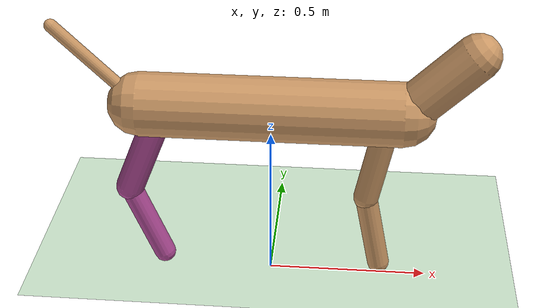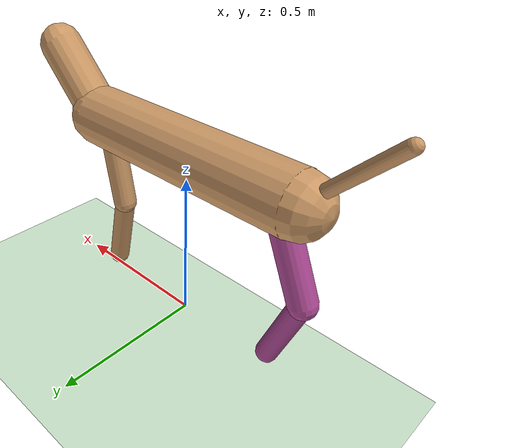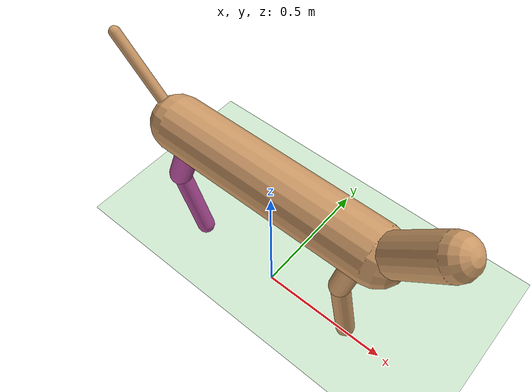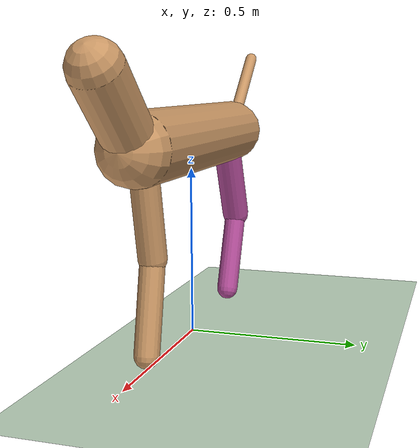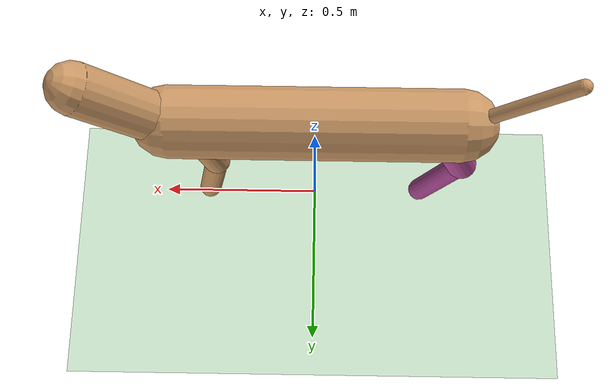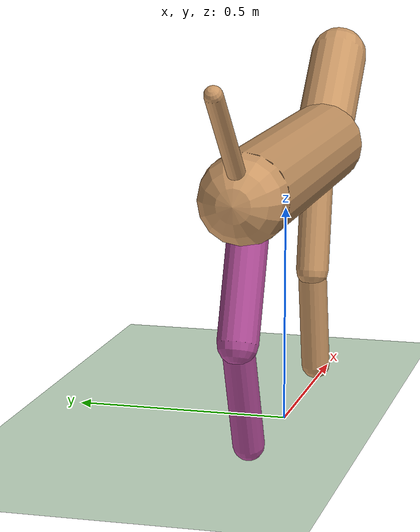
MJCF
<?xml version="1.0" encoding="utf-8"?>
<mujoco model="dog">
  <compiler angle="degree" inertiafromgeom="true" />
  <option integrator="RK4" timestep="0.002" />
  <visual>
    <global offwidth="1920" offheight="1080" />
  </visual>
  <default>
    <joint armature="0.01" damping="0.1" limited="true" />
    <geom conaffinity="0" condim="3" contype="1" density="1000" friction="0.9 0.1 0.1" rgba="0.8 0.6 0.4 1" />
  </default>
  <asset>
    <texture type="skybox" builtin="gradient" rgb1=".4 .5 .6" rgb2="0 0 0" width="100" height="100" />
    <texture builtin="checker" height="100" name="texplane" rgb1="0 0 0" rgb2="0.8 0.8 0.8" type="2d" width="100" />
    <material name="MatPlane" reflectance="0.5" shininess="1" specular="1" texrepeat="60 60" texture="texplane" />
  </asset>
  <worldbody>
    <light cutoff="100" diffuse="1 1 1" dir="0 0 -1.3" directional="true" exponent="1" pos="0 0 1.3" specular=".1 .1 .1" />
    <geom conaffinity="1" condim="3" name="floor" pos="0 0 0" rgba="0.8 0.9 0.8 1" size="100 100 100" type="plane" material="MatPlane" />
    <body name="torso" pos="0.0000 0.0000 0.5900">
      <camera name="track" mode="trackcom" pos="0 -3 -0.25" xyaxes="1 0 0 0 0 1" />
      <joint armature="0" axis="1 0 0" damping="0" limited="false" name="rootx" pos="0 0 0" stiffness="0" type="slide" />
      <joint armature="0" axis="0 0 1" damping="0" limited="false" name="rootz" pos="0 0 0" ref="0.5900" stiffness="0" type="slide" />
      <joint armature="0" axis="0 1 0" damping="0" limited="false" name="rooty" pos="0 0 0" stiffness="0" type="hinge" />
      <geom name="torso_geom" type="capsule" size="0.1000" rgba="0.8 0.6 0.4 1" friction="0.9" fromto="-0.4000 0.0000 0.0000 0.4000 0.0000 0.0000" />
      <body name="head" pos="0.4000 0.0000 0.0000">
        <joint axis="0 -1 0" name="head_joint" pos="0 0 0" range="-20 20" type="hinge" />
        <geom name="head_geom" type="capsule" size="0.0700" friction="0.9" rgba="0.8 0.6 0.4 1" fromto="0.0000 0.0000 0.0000 0.2000 0.0000 0.2000" />
      </body>
      <body name="tail" pos="-0.4000 0.0000 0.0000">
        <joint axis="0 -1 0" name="tail_joint" pos="0 0 0" range="-40 40" type="hinge" />
        <geom name="tail_geom" type="capsule" size="0.0200" friction="0.9" rgba="0.8 0.6 0.4 1" fromto="0.0000 0.0000 0.0000 -0.2500 0.0000 0.2500" />
      </body>
      <body name="front_upper" pos="0.3500 0.0000 -0.0500">
        <joint axis="0 -1 0" name="front_upper_joint" pos="0 0 0" range="-70 70" type="hinge" />
        <geom name="front_upper_geom" type="capsule" size="0.0400" friction="0.9" rgba="0.8 0.6 0.4 1" fromto="0.0000 0.0000 0.0000 -0.0500 0.0000 -0.2500" />
        <body name="front_lower" pos="-0.0500 0.0000 -0.2500">
          <joint axis="0 -1 0" name="front_lower_joint" pos="0 0 0" range="-90 30" type="hinge" />
          <geom name="front_lower_geom" type="capsule" size="0.0350" friction="1.9" rgba="0.8 0.6 0.4 1" fromto="0.0000 0.0000 0.0000 0.0500 0.0000 -0.2500" />
        </body>
      </body>
      <body name="back_upper" pos="-0.3500 0.0000 -0.0500">
        <joint axis="0 -1 0" name="back_upper_joint" pos="0 0 0" range="-70 70" type="hinge" />
        <geom name="back_upper_geom" type="capsule" size="0.0450" friction="0.9" rgba="0.7 0.3 0.6 1" fromto="0.0000 0.0000 0.0000 -0.1000 0.0000 -0.2500" />
        <body name="back_lower" pos="-0.1000 0.0000 -0.2500">
          <joint axis="0 -1 0" name="back_lower_joint" pos="0 0 0" range="-30 90" type="hinge" />
          <geom name="back_lower_geom" type="capsule" size="0.0350" friction="1.9" rgba="0.7 0.3 0.6 1" fromto="0.0000 0.0000 0.0000 0.1000 0.0000 -0.2500" />
        </body>
      </body>
    </body>
  </worldbody>
  <actuator>
    <motor ctrllimited="true" ctrlrange="-1.0 1.0" gear="175.6" joint="front_upper_joint" />
    <motor ctrllimited="true" ctrlrange="-1.0 1.0" gear="175.6" joint="front_lower_joint" />
    <motor ctrllimited="true" ctrlrange="-1.0 1.0" gear="175.6" joint="back_upper_joint" />
    <motor ctrllimited="true" ctrlrange="-1.0 1.0" gear="175.6" joint="back_lower_joint" />
  </actuator>
</mujoco>
